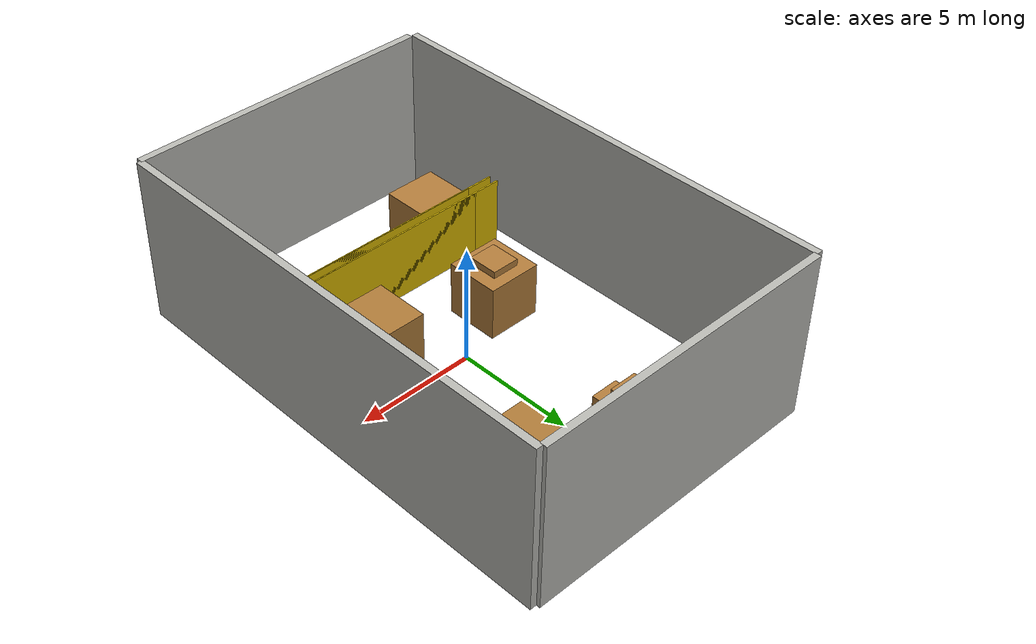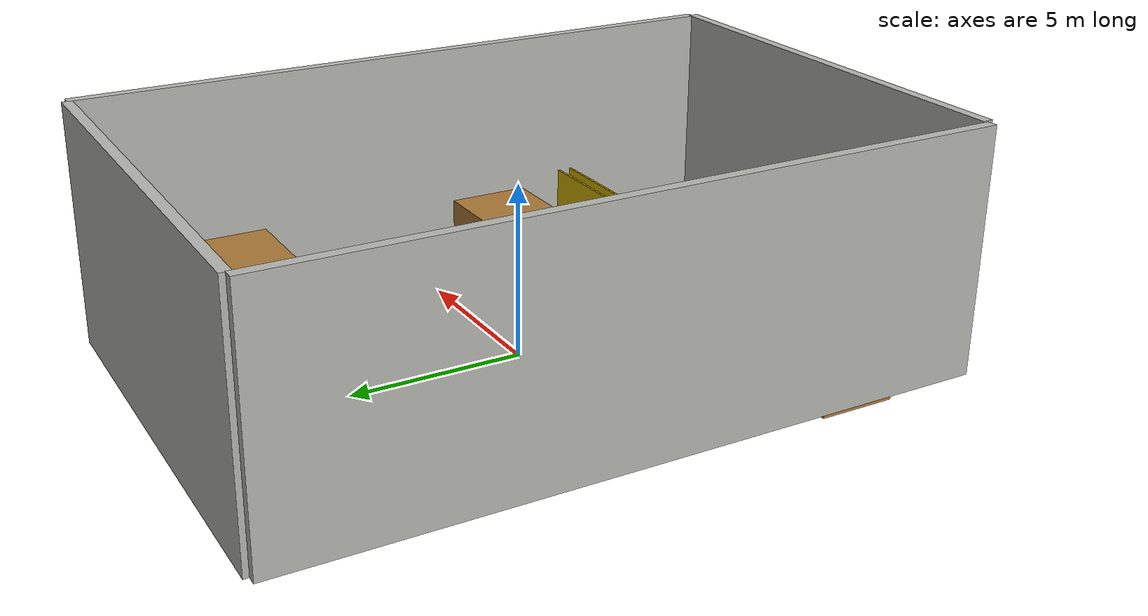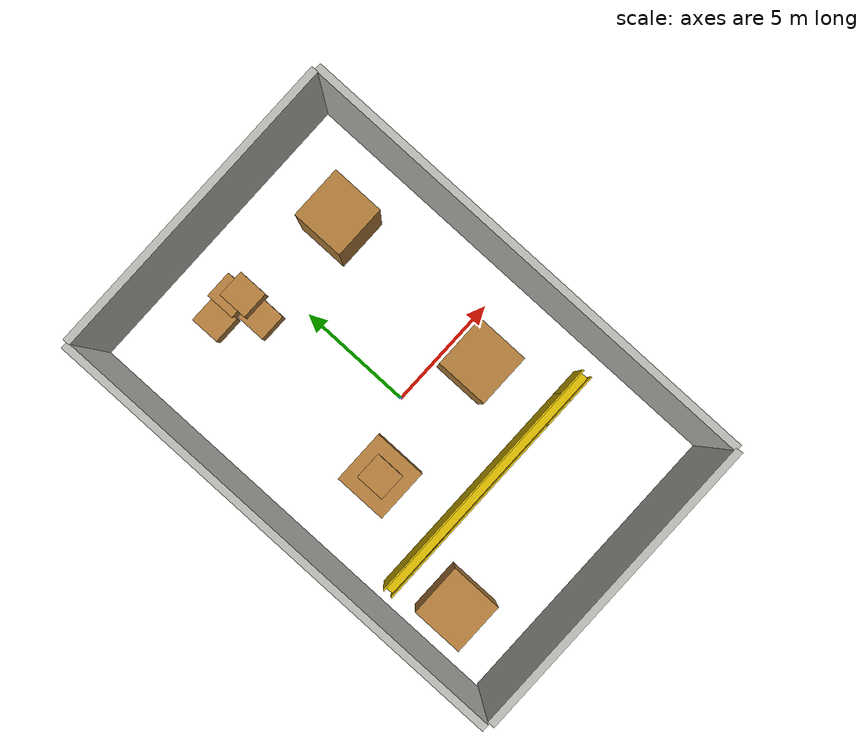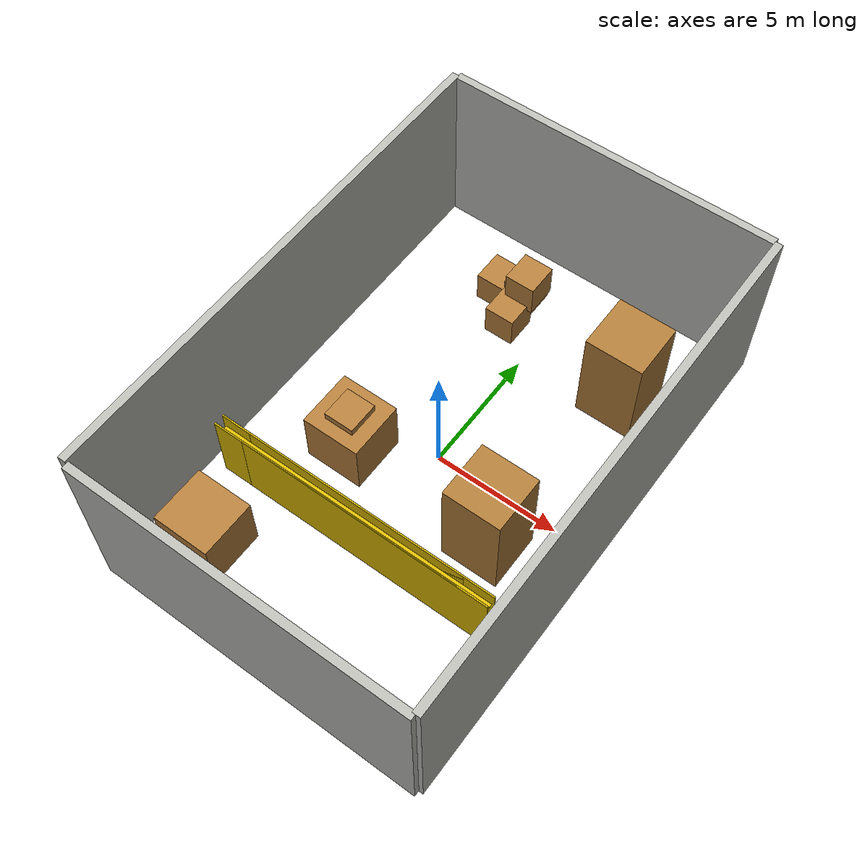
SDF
<sdf version="1.9">
 <world name="industrial-warehouse">
  <gravity>0 0 -9.8</gravity>
  <physics default="0" name="default_physics" type="ode">
   <max_step_size>0.01</max_step_size>
   <real_time_factor>1</real_time_factor>
   <real_time_update_rate>100</real_time_update_rate>
  </physics>
  <model name="wall_back">
   <static>true</static>
   <pose>6.6249947547912598 0 3.5 0 0 0</pose>
   <link name="link">
    <collision name="c"><geometry><box><size>0.2999999999999999 20 7</size></box></geometry></collision>
    <visual name="v">
     <geometry><box><size>0.29999999999999999 20 7</size></box></geometry>
     <material>
      <ambient>0.720000029 0.720000029 0.699999988 1</ambient>
      <diffuse>0.720000029 0.720000029 0.699999988 1</diffuse>
     </material>
    </visual>
    <inertial>
     <mass>1</mass>
     <inertia><ixx>1</ixx><ixy>0</ixy><ixz>0</ixz><iyy>1</iyy><iyz>0</iyz><izz>1</izz></inertia>
    </inertial>
   </link>
  </model>
  <model name="wall_front">
   <static>true</static>
   <pose>-6.6103386878967285 0 3.5 0 0 0</pose>
   <link name="link">
    <collision name="c"><geometry><box><size>0.29999999999999999 20 7</size></box></geometry></collision>
    <visual name="v">
     <geometry><box><size>0.29999999999999999 20 7</size></box></geometry>
     <material>
      <ambient>0.720000029 0.720000029 0.699999988 1</ambient>
      <diffuse>0.720000029 0.720000029 0.699999988 1</diffuse>
     </material>
    </visual>
    <inertial>
     <mass>1</mass>
     <inertia><ixx>1</ixx><ixy>0</ixy><ixz>0</ixz><iyy>1</iyy><iyz>0</iyz><izz>1</izz></inertia>
    </inertial>
   </link>
  </model>
  <model name="wall_left">
   <static>true</static>
   <pose>0.10749799758195877 -10.062800407409668 3.5 0 0 0</pose>
   <link name="link">
    <collision name="c"><geometry><box><size>13 0.29999999999999999 7</size></box></geometry></collision>
    <visual name="v">
     <geometry><box><size>13 0.29999999999999999 7</size></box></geometry>
     <material>
      <ambient>0.720000029 0.720000029 0.699999988 1</ambient>
      <diffuse>0.720000029 0.720000029 0.699999988 1</diffuse>
     </material>
    </visual>
    <inertial>
     <mass>1</mass>
     <inertia><ixx>1</ixx><ixy>0</ixy><ixz>0</ixz><iyy>1</iyy><iyz>0</iyz><izz>1</izz></inertia>
    </inertial>
   </link>
  </model>
  <model name="wall_right">
   <static>true</static>
   <pose>0 10.002140998840332 3.5 0 0 0</pose>
   <link name="link">
    <collision name="c"><geometry><box><size>10 0.29999999999999999 7</size></box></geometry></collision>
    <visual name="v">
     <geometry><box><size>13 0.29999999999999999 7</size></box></geometry>
     <material>
      <ambient>0.720000029 0.720000029 0.699999988 1</ambient>
      <diffuse>0.720000029 0.720000029 0.699999988 1</diffuse>
     </material>
    </visual>
    <inertial>
     <mass>1</mass>
     <inertia><ixx>1</ixx><ixy>0</ixy><ixz>0</ixz><iyy>1</iyy><iyz>0</iyz><izz>1</izz></inertia>
    </inertial>
   </link>
  </model>
  <model name="shelf_A1">
   <static>true</static>
   <pose>-0.20294800400733948 -4.6162104606628418 0 0 0 0</pose>
   <link name="link">
    <visual name="post_fl">
     <pose>-0.59999999999999998 -0.20000000000000001 1.5 0 0 0</pose>
     <geometry><box><size>10.1059999999999999998 0.059999999999999998 3</size></box></geometry>
     <material>
      <ambient>0.850000024 0.720000029 0 1</ambient>
      <diffuse>0.850000024 0.720000029 0 1</diffuse>
     </material>
    </visual>
    <visual name="post_fr">
     <pose>0.59999999999999998 -0.20000000000000001 1.5 0 0 0</pose>
     <geometry><box><size>10.1059999999999999998 0.059999999999999998 3</size></box></geometry>
     <material>
      <ambient>0.850000024 0.720000029 0 1</ambient>
      <diffuse>0.850000024 0.720000029 0 1</diffuse>
     </material>
    </visual>
    <visual name="post_bl">
     <pose>-0.59999999999999998 0.20000000000000001 1.5 0 0 0</pose>
     <geometry><box><size>10.1059999999999999998 0.059999999999999998 3</size></box></geometry>
     <material>
      <ambient>0.850000024 0.720000029 0 1</ambient>
      <diffuse>0.850000024 0.720000029 0 1</diffuse>
     </material>
    </visual>
    <visual name="post_br">
     <pose>0.59999999999999998 0.20000000000000001 1.5 0 0 0</pose>
     <geometry><box><size>10.1059999999999999998 0.059999999999999998 3</size></box></geometry>
     <material>
      <ambient>0.850000024 0.720000029 0 1</ambient>
      <diffuse>0.850000024 0.720000029 0 1</diffuse>
     </material>
    </visual>
    <visual name="shelf_l1">
     <pose>0 0 0.80000000000000004 0 0 0</pose>
     <geometry><box><size>11.13 0.45000000000000001 0.040000000000000001</size></box></geometry>
     <material>
      <ambient>0.850000024 0.720000029 0 1</ambient>
      <diffuse>0.850000024 0.720000029 0 1</diffuse>
     </material>
    </visual>
    <visual name="shelf_l2">
     <pose>0 0 1.6000000000000001 0 0 0</pose>
     <geometry><box><size>11.13 0.45000000000000001 0.040000000000000001</size></box></geometry>
     <material>
      <ambient>0.850000024 0.720000029 0 1</ambient>
      <diffuse>0.850000024 0.720000029 0 1</diffuse>
     </material>
    </visual>
    <visual name="shelf_l3">
     <pose>0 0 2.3999999999999999 0 0 0</pose>
     <geometry><box><size>11.13 0.45000000000000001 0.040000000000000001</size></box></geometry>
     <material>
      <ambient>0.850000024 0.720000029 0 1</ambient>
      <diffuse>0.850000024 0.720000029 0 1</diffuse>
     </material>
    </visual>
    <collision name="c">
     <geometry><box><size>11.13 0.5 3</size></box></geometry>
     <pose>0 0 1.5 0 0 0</pose>
    </collision>
    <inertial>
     <mass>1</mass>
     <inertia><ixx>1</ixx><ixy>0</ixy><ixz>0</ixz><iyy>1</iyy><iyz>0</iyz><izz>1</izz></inertia>
    </inertial>
   </link>
  </model>
  <model name="box_A1_l1_b">
   <static>true</static>
   <pose>3.0999999046325684 -1.3271505832672119 0.97000002861022949 0 0 0</pose>
   <link name="link">
    <visual name="v">
     <geometry><box><size>2.3199999999999998 2.2800000000000002 4.2999999999999998</size></box></geometry>
     <material>
      <ambient>0.680000007 0.479999989 0.219999999 1</ambient>
      <diffuse>0.680000007 0.479999989 0.219999999 1</diffuse>
     </material>
    </visual>
    <collision name="c">
     <geometry><box><size>2.3199999999999998 2.2800000000000002 2.2999999999999998</size></box></geometry>
    </collision>
    <inertial>
     <mass>1</mass>
     <inertia><ixx>1</ixx><ixy>0</ixy><ixz>0</ixz><iyy>1</iyy><iyz>0</iyz><izz>1</izz></inertia>
    </inertial>
   </link>
  </model>
  <model name="box_A1_l2_a">
   <static>true</static>
   <pose>-4.641049861907959 -7.1444401741027832 0.38762947916984558 0 0 0</pose>
   <link name="link">
    <visual name="v">
     <geometry><box><size>2.3199999999999998 2.2800000000000002 2.2999999999999998</size></box></geometry>
     <material>
      <ambient>0.699999988 0.49000001 0.230000004 1</ambient>
      <diffuse>0.699999988 0.49000001 0.230000004 1</diffuse>
     </material>
    </visual>
    <collision name="c">
     <geometry><box><size>2.3199999999999998 2.2800000000000002 2.2999999999999998</size></box></geometry>
    </collision>
    <inertial>
     <mass>1</mass>
     <inertia><ixx>1</ixx><ixy>0</ixy><ixz>0</ixz><iyy>1</iyy><iyz>0</iyz><izz>1</izz></inertia>
    </inertial>
   </link>
  </model>
  <model name="box_A1_l1_c">
   <static>true</static>
   <pose>3.5841701030731201 6.5221281051635742 0.97000002861022949 0 0 0</pose>
   <link name="link">
    <visual name="v">
     <geometry><box><size>2.3199999999999998 2.2800000000000002 4.2999999999999998</size></box></geometry>
     <material>
      <ambient>0.680000007 0.479999989 0.219999999 1</ambient>
      <diffuse>0.680000007 0.479999989 0.219999999 1</diffuse>
     </material>
    </visual>
    <collision name="c">
     <geometry><box><size>2.3199999999999998 2.2800000000000002 2.2999999999999998</size></box></geometry>
    </collision>
    <inertial>
     <mass>1</mass>
     <inertia><ixx>1</ixx><ixy>0</ixy><ixz>0</ixz><iyy>1</iyy><iyz>0</iyz><izz>1</izz></inertia>
    </inertial>
   </link>
  </model>
  <model name="box_A1_l2_d">
   <static>true</static>
   <pose>-2.7759099006652832 -1.4242199659347534 0.9762676620483398 0 0 0</pose>
   <link name="link">
    <visual name="v">
     <geometry><box><size>2.3199999999999998 2.2800000000000002 2.2999999999999998</size></box></geometry>
     <material>
      <ambient>0.699999988 0.49000001 0.230000004 1</ambient>
      <diffuse>0.699999988 0.49000001 0.230000004 1</diffuse>
     </material>
    </visual>
    <collision name="c">
     <geometry><box><size>2.3199999999999998 2.2800000000000002 2.2999999999999998</size></box></geometry>
    </collision>
    <inertial>
     <mass>1</mass>
     <inertia><ixx>1</ixx><ixy>0</ixy><ixz>0</ixz><iyy>1</iyy><iyz>0</iyz><izz>1</izz></inertia>
    </inertial>
   </link>
  </model>
  <model name="boxa1_l2_d">
   <static>true</static>
   <pose>-2.7759103775024414 -1.4242199659347534 1.7699999809265137 0 0 0</pose>
   <link name="link">
    <visual name="v">
     <geometry><box><size>1.2000000000000002 1.28 1.3</size></box></geometry>
     <material>
      <ambient>0.699999988 0.49000001 0.230000004 1</ambient>
      <diffuse>0.699999988 0.49000001 0.230000004 1</diffuse>
     </material>
    </visual>
    <collision name="c"><geometry><box><size>1.3200000000000001 1.28 1.3</size></box></geometry></collision>
    <inertial>
     <mass>1</mass>
     <inertia><ixx>1</ixx><ixy>0</ixy><ixz>0</ixz><iyy>1</iyy><iyz>0</iyz><izz>1</izz></inertia>
    </inertial>
   </link>
  </model>
  <model name="boxa1_l2_d_1">
   <static>true</static>
   <pose>-1.349079966545105 6.2238898277282715 0.67910367250442505 0 0 0</pose>
   <link name="link">
    <visual name="v">
     <geometry><box><size>1.2000000000000002 1.28 1.3</size></box></geometry>
     <material>
      <ambient>0.699999988 0.49000001 0.230000004 1</ambient>
      <diffuse>0.699999988 0.49000001 0.230000004 1</diffuse>
     </material>
    </visual>
    <collision name="c"><geometry><box><size>1.3200000000000001 1.28 1.3</size></box></geometry></collision>
    <inertial>
     <mass>1</mass>
     <inertia><ixx>1</ixx><ixy>0</ixy><ixz>0</ixz><iyy>1</iyy><iyz>0</iyz><izz>1</izz></inertia>
    </inertial>
   </link>
  </model>
  <model name="boxa1_l2_d_2">
   <static>true</static>
   <pose>-1.5199300050735474 7.6825499534606934 0.65872597694396973 0 0 0</pose>
   <link name="link">
    <visual name="v">
     <geometry><box><size>1.2000000000000002 1.28 1.3</size></box></geometry>
     <material>
      <ambient>0.699999988 0.49000001 0.230000004 1</ambient>
      <diffuse>0.699999988 0.49000001 0.230000004 1</diffuse>
     </material>
    </visual>
    <collision name="c"><geometry><box><size>1.3200000000000001 1.28 1.3</size></box></geometry></collision>
    <inertial>
     <mass>1</mass>
     <inertia><ixx>1</ixx><ixy>0</ixy><ixz>0</ixz><iyy>1</iyy><iyz>0</iyz><izz>1</izz></inertia>
    </inertial>
   </link>
  </model>
  <model name="boxa1_l2_d_3">
   <static>true</static>
   <pose>-2.6413800716400146 7.5376200675964355 0.32011684775352478 0 0 0</pose>
   <link name="link">
    <visual name="v">
     <geometry><box><size>1.2000000000000002 1.28 1.3</size></box></geometry>
     <material>
      <ambient>0.699999988 0.49000001 0.230000004 1</ambient>
      <diffuse>0.699999988 0.49000001 0.230000004 1</diffuse>
     </material>
    </visual>
    <collision name="c"><geometry><box><size>1.3200000000000001 1.28 1.3</size></box></geometry></collision>
    <inertial>
     <mass>1</mass>
     <inertia><ixx>1</ixx><ixy>0</ixy><ixz>0</ixz><iyy>1</iyy><iyz>0</iyz><izz>1</izz></inertia>
    </inertial>
   </link>
  </model>
  <model name="boxa1_l2_d_4">
   <static>true</static>
   <pose>-1.1522423545073472 7.1824674599455598 1.7699999809265137 0 0 0</pose>
   <link name="link">
    <visual name="v">
     <geometry><box><size>1.2000000000000002 1.28 1.3</size></box></geometry>
     <material>
      <ambient>0.699999988 0.49000001 0.230000004 1</ambient>
      <diffuse>0.699999988 0.49000001 0.230000004 1</diffuse>
     </material>
    </visual>
    <collision name="c"><geometry><box><size>1.3200000000000001 1.28 1.3</size></box></geometry></collision>
    <inertial>
     <mass>1</mass>
     <inertia><ixx>1</ixx><ixy>0</ixy><ixz>0</ixz><iyy>1</iyy><iyz>0</iyz><izz>1</izz></inertia>
    </inertial>
   </link>
  </model>
  <light name="Warehouse_CeilingLight_003" type="point">
   <pose>0 0 8.5 0 0 0</pose>
   <diffuse>0.5 0.5 0.5 1</diffuse>
   <specular>0.2 0.2 0.2 1</specular>
   <attenuation>
    <range>80</range>
    <constant>0.3</constant>
    <linear>0.01</linear>
    <quadratic>0.001</quadratic>
   </attenuation>
   <direction>0.1 0.1 -1</direction>
  </light>
 </world>
</sdf>
